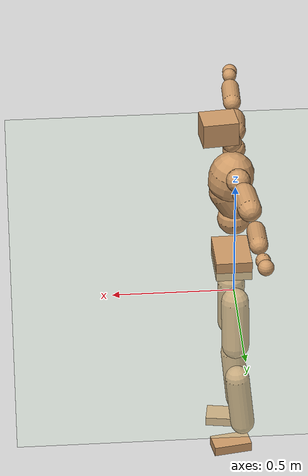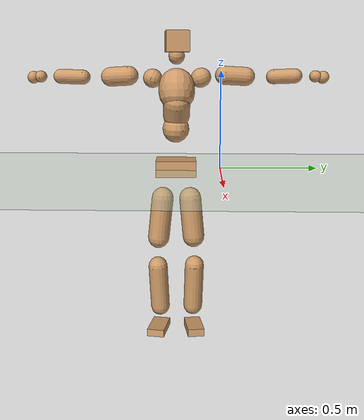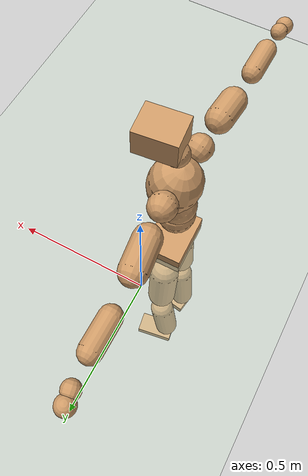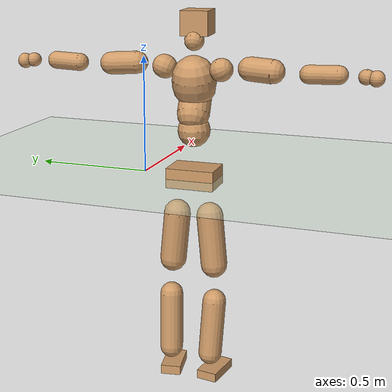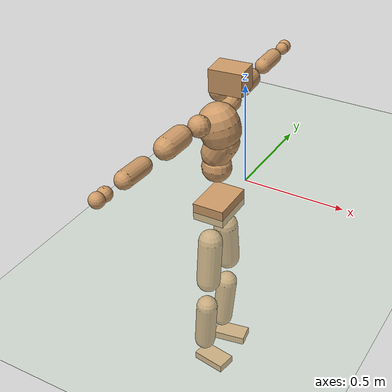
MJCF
<mujoco model="humanoid">
  <compiler coordinate="local" angle="radian"/>
  <default>
    <joint damping="0.0" armature="0.01" stiffness="0.0" limited="true"/>
    <geom conaffinity="1" condim="3" contype="7" margin="0.001" rgba="0.8 0.6 .4 1"/>
  </default>
  <asset>
    <texture type="skybox" builtin="gradient" rgb1=".4 .5 .6" rgb2="0 0 0" width="100" height="100"/>
    <texture builtin="flat" height="1278" mark="cross" markrgb="1 1 1" name="texgeom" random="0.01" rgb1="0.8 0.6 0.4" rgb2="0.8 0.6 0.4" type="cube" width="127"/>
    <texture builtin="checker" height="100" name="texplane" rgb1="0 0 0" rgb2="0.8 0.8 0.8" type="2d" width="100"/>
    <material name="MatPlane" reflectance="0.5" shininess="1" specular="1" texrepeat="60 60" texture="texplane"/>
    <material name="geom" texture="texgeom" texuniform="true"/>
  </asset>
  <worldbody>
    <light cutoff="100" diffuse="1 1 1" dir="-0 0 -1.3" directional="true" exponent="1" pos="0 0 1.3" specular=".1 .1 .1"/>
    <geom conaffinity="1" condim="3" name="floor" pos="0 0 0" rgba="0.8 0.9 0.8 1" size="100 100 .2" type="plane" material="MatPlane"/>
    <body name="Pelvis" pos="-0.0034 -0.2303 0.0156">
      <freejoint name="Pelvis"/>
      <geom type="box" contype="1" conaffinity="1" density="5359.375427" pos="-0.0073 -0.0002 -0.0134" size="0.0752 0.1039 0.0422" quat="0.9999 0.0000 0.0000 0.0104" name="Pelvis"/>
      <body name="L_Hip" pos="-0.0164 0.0666 -0.0957">
        <joint name="L_Hip_x" type="hinge" pos="0 0 0" axis="1 0 0" stiffness="1600" damping="160" armature="0.02" range="-180.0000 180.0000"/>
        <joint name="L_Hip_y" type="hinge" pos="0 0 0" axis="0 1 0" stiffness="1600" damping="160" armature="0.02" range="-180.0000 180.0000"/>
        <joint name="L_Hip_z" type="hinge" pos="0 0 0" axis="0 0 1" stiffness="1600" damping="160" armature="0.02" range="-180.0000 180.0000"/>
        <geom type="capsule" contype="1" conaffinity="1" density="2040.816327" size="0.0579" fromto="-0.0008 0.0078 -0.0876 -0.0027 0.0268 -0.2994" name="L_Hip"/>
        <body name="L_Knee" pos="-0.0035 0.0346 -0.387">
          <joint name="L_Knee_x" type="hinge" pos="0 0 0" axis="1 0 0" stiffness="1600" damping="160" armature="0.02" range="-180.0000 180.0000"/>
          <joint name="L_Knee_y" type="hinge" pos="0 0 0" axis="0 1 0" stiffness="1600" damping="160" armature="0.02" range="-180.0000 180.0000"/>
          <joint name="L_Knee_z" type="hinge" pos="0 0 0" axis="0 0 1" stiffness="1600" damping="160" armature="0.02" range="-180.0000 180.0000"/>
          <geom type="capsule" contype="1" conaffinity="1" density="1234.567901" size="0.0512" fromto="-0.0087 -0.0026 -0.0807 -0.0351 -0.0104 -0.3266" name="L_Knee"/>
          <body name="L_Ankle" pos="-0.0438 -0.0129 -0.4073">
            <joint name="L_Ankle_x" type="hinge" pos="0 0 0" axis="1 0 0" stiffness="1600" damping="160" armature="0.02" range="-180.0000 180.0000"/>
            <joint name="L_Ankle_y" type="hinge" pos="0 0 0" axis="0 1 0" stiffness="1600" damping="160" armature="0.02" range="-180.0000 180.0000"/>
            <joint name="L_Ankle_z" type="hinge" pos="0 0 0" axis="0 0 1" stiffness="1600" damping="160" armature="0.02" range="-180.0000 180.0000"/>
            <geom type="box" contype="1" conaffinity="1" density="999.999972" pos="0.0583 0.0098 -0.0282" size="0.0816 0.0442 0.0207" quat="0.9966 0.0000 0.0000 0.0829" name="L_Ankle"/>
            <body name="L_Toe" pos="0.1167 0.0195 -0.0563">
              <joint name="L_Toe_x" type="hinge" pos="0 0 0" axis="1 0 0" stiffness="1000" damping="100" armature="0.02" range="-180.0000 180.0000"/>
              <joint name="L_Toe_y" type="hinge" pos="0 0 0" axis="0 1 0" stiffness="1000" damping="100" armature="0.02" range="-180.0000 180.0000"/>
              <joint name="L_Toe_z" type="hinge" pos="0 0 0" axis="0 0 1" stiffness="1000" damping="100" armature="0.02" range="-180.0000 180.0000"/>
              <geom type="box" contype="1" conaffinity="1" density="8325848.632717" pos="0.0000 0.0000 0.0280" size="0.0009 0.0022 0.001" quat="0.9960 0.0000 0.0000 0.0897" name="L_Toe"/>
            </body>
          </body>
        </body>
      </body>
      <body name="R_Hip" pos="-0.0119 -0.0637 -0.0953">
        <joint name="R_Hip_x" type="hinge" pos="0 0 0" axis="1 0 0" stiffness="1600" damping="160" armature="0.02" range="-180.0000 180.0000"/>
        <joint name="R_Hip_y" type="hinge" pos="0 0 0" axis="0 1 0" stiffness="1600" damping="160" armature="0.02" range="-180.0000 180.0000"/>
        <joint name="R_Hip_z" type="hinge" pos="0 0 0" axis="0 0 1" stiffness="1600" damping="160" armature="0.02" range="-180.0000 180.0000"/>
        <geom type="capsule" contype="1" conaffinity="1" density="2040.816327" size="0.0571" fromto="-0.0016 -0.0090 -0.0866 -0.0057 -0.0320 -0.3079" name="R_Hip"/>
        <body name="R_Knee" pos="-0.0073 -0.041 -0.3945">
          <joint name="R_Knee_x" type="hinge" pos="0 0 0" axis="1 0 0" stiffness="1600" damping="160" armature="0.02" range="-180.0000 180.0000"/>
          <joint name="R_Knee_y" type="hinge" pos="0 0 0" axis="0 1 0" stiffness="1600" damping="160" armature="0.02" range="-180.0000 180.0000"/>
          <joint name="R_Knee_z" type="hinge" pos="0 0 0" axis="0 0 1" stiffness="1600" damping="160" armature="0.02" range="-180.0000 180.0000"/>
          <geom type="capsule" contype="1" conaffinity="1" density="1234.567901" size="0.0514" fromto="-0.0080 0.0033 -0.0809 -0.0321 0.0131 -0.3239" name="R_Knee"/>
          <body name="R_Ankle" pos="-0.0402 0.0163 -0.4049">
            <joint name="R_Ankle_x" type="hinge" pos="0 0 0" axis="1 0 0" stiffness="1600" damping="160" armature="0.02" range="-180.0000 180.0000"/>
            <joint name="R_Ankle_y" type="hinge" pos="0 0 0" axis="0 1 0" stiffness="1600" damping="160" armature="0.02" range="-180.0000 180.0000"/>
            <joint name="R_Ankle_z" type="hinge" pos="0 0 0" axis="0 0 1" stiffness="1600" damping="160" armature="0.02" range="-180.0000 180.0000"/>
            <geom type="box" contype="1" conaffinity="1" density="1000.000058" pos="0.0600 -0.0094 -0.0243" size="0.0837 0.0461 0.0198" quat="0.9970 0.0000 0.0000 -0.0774" name="R_Ankle"/>
            <body name="R_Toe" pos="0.1199 -0.0187 -0.0486">
              <joint name="R_Toe_x" type="hinge" pos="0 0 0" axis="1 0 0" stiffness="1000" damping="100" armature="0.02" range="-180.0000 180.0000"/>
              <joint name="R_Toe_y" type="hinge" pos="0 0 0" axis="0 1 0" stiffness="1000" damping="100" armature="0.02" range="-180.0000 180.0000"/>
              <joint name="R_Toe_z" type="hinge" pos="0 0 0" axis="0 0 1" stiffness="1000" damping="100" armature="0.02" range="-180.0000 180.0000"/>
              <geom type="box" contype="1" conaffinity="1" density="8217818.840924" pos="0.0000 0.0000 0.0272" size="0.0008 0.0022 0.0011" quat="0.9977 0.0000 0.0000 -0.0682" name="R_Toe"/>
            </body>
          </body>
        </body>
      </body>
      <body name="Torso" pos="-0.0153 -0.0038 0.1104">
        <joint name="Torso_x" type="hinge" pos="0 0 0" axis="1 0 0" stiffness="2000" damping="200" armature="0.02" range="-180.0000 180.0000"/>
        <joint name="Torso_y" type="hinge" pos="0 0 0" axis="0 1 0" stiffness="2000" damping="200" armature="0.02" range="-180.0000 180.0000"/>
        <joint name="Torso_z" type="hinge" pos="0 0 0" axis="0 0 1" stiffness="2000" damping="200" armature="0.02" range="-180.0000 180.0000"/>
        <geom type="capsule" contype="1" conaffinity="1" density="2040.816327" size="0.069" fromto="0.0012 0.0029 0.0754 0.0013 0.0030 0.0774" name="Torso"/>
        <body name="Spine" pos="0.0025 0.0059 0.1528">
          <joint name="Spine_x" type="hinge" pos="0 0 0" axis="1 0 0" stiffness="2000" damping="200" armature="0.02" range="-180.0000 180.0000"/>
          <joint name="Spine_y" type="hinge" pos="0 0 0" axis="0 1 0" stiffness="2000" damping="200" armature="0.02" range="-180.0000 180.0000"/>
          <joint name="Spine_z" type="hinge" pos="0 0 0" axis="0 0 1" stiffness="2000" damping="200" armature="0.02" range="-180.0000 180.0000"/>
          <geom type="capsule" contype="1" conaffinity="1" density="2040.816327" size="0.0688" fromto="0.0349 0.0032 0.0592 -0.0034 -0.0003 -0.0057" name="Spine"/>
          <body name="Chest" pos="0.0316 0.0029 0.0535">
            <joint name="Chest_x" type="hinge" pos="0 0 0" axis="1 0 0" stiffness="2000" damping="200" armature="0.02" range="-180.0000 180.0000"/>
            <joint name="Chest_y" type="hinge" pos="0 0 0" axis="0 1 0" stiffness="2000" damping="200" armature="0.02" range="-180.0000 180.0000"/>
            <joint name="Chest_z" type="hinge" pos="0 0 0" axis="0 0 1" stiffness="2000" damping="200" armature="0.02" range="-180.0000 180.0000"/>
            <geom type="capsule" contype="1" conaffinity="1" density="2040.816327" size="0.0921" fromto="-0.0229 -0.0007 0.0892 -0.0146 -0.0004 0.0569" name="Chest"/>
            <body name="Neck" pos="-0.0442 -0.0026 0.2076">
              <joint name="Neck_x" type="hinge" pos="0 0 0" axis="1 0 0" stiffness="1000" damping="100" armature="0.02" range="-180.0000 180.0000"/>
              <joint name="Neck_y" type="hinge" pos="0 0 0" axis="0 1 0" stiffness="1000" damping="100" armature="0.02" range="-180.0000 180.0000"/>
              <joint name="Neck_z" type="hinge" pos="0 0 0" axis="0 0 1" stiffness="1000" damping="100" armature="0.02" range="-180.0000 180.0000"/>
              <geom type="capsule" contype="1" conaffinity="1" density="1000" size="0.0412" fromto="0.0254 0.0018 0.0331 0.0266 0.0019 0.0347" name="Neck"/>
              <body name="Head" pos="0.0519 0.0036 0.0679">
                <joint name="Head_x" type="hinge" pos="0 0 0" axis="1 0 0" stiffness="1000" damping="100" armature="0.02" range="-180.0000 180.0000"/>
                <joint name="Head_y" type="hinge" pos="0 0 0" axis="0 1 0" stiffness="1000" damping="100" armature="0.02" range="-180.0000 180.0000"/>
                <joint name="Head_z" type="hinge" pos="0 0 0" axis="0 0 1" stiffness="1000" damping="100" armature="0.02" range="-180.0000 180.0000"/>
                <geom type="box" contype="1" conaffinity="1" density="2249.999999" pos="0.0270 0.0028 0.0349" size="0.073 0.0585 0.051" quat="0.9986 0.0000 0.0000 0.0521" name="Head"/>
              </body>
            </body>
            <body name="L_Thorax" pos="-0.032 0.079 0.1169">
              <joint name="L_Thorax_x" type="hinge" pos="0 0 0" axis="1 0 0" stiffness="1000" damping="100" armature="0.02" range="-180.0000 180.0000"/>
              <joint name="L_Thorax_y" type="hinge" pos="0 0 0" axis="0 1 0" stiffness="1000" damping="100" armature="0.02" range="-180.0000 180.0000"/>
              <joint name="L_Thorax_z" type="hinge" pos="0 0 0" axis="0 0 1" stiffness="1000" damping="100" armature="0.02" range="-180.0000 180.0000"/>
              <geom type="capsule" contype="1" conaffinity="1" density="1000" size="0.0493" fromto="-0.0044 0.0460 0.0171 -0.0039 0.0411 0.0153" name="L_Thorax"/>
              <body name="L_Shoulder" pos="-0.0082 0.0871 0.0324">
                <joint name="L_Shoulder_x" type="hinge" pos="0 0 0" axis="1 0 0" stiffness="1000" damping="100" armature="0.02" range="-720.0000 720.0000"/>
                <joint name="L_Shoulder_y" type="hinge" pos="0 0 0" axis="0 1 0" stiffness="1000" damping="100" armature="0.02" range="-720.0000 720.0000"/>
                <joint name="L_Shoulder_z" type="hinge" pos="0 0 0" axis="0 0 1" stiffness="1000" damping="100" armature="0.02" range="-720.0000 720.0000"/>
                <geom type="capsule" contype="1" conaffinity="1" density="1000" size="0.0473" fromto="-0.0088 0.0766 -0.0042 -0.0214 0.1865 -0.0103" name="L_Shoulder"/>
                <body name="L_Elbow" pos="-0.0302 0.2632 -0.0145">
                  <joint name="L_Elbow_x" type="hinge" pos="0 0 0" axis="1 0 0" stiffness="1000" damping="100" armature="0.02" range="-720.0000 720.0000"/>
                  <joint name="L_Elbow_y" type="hinge" pos="0 0 0" axis="0 1 0" stiffness="1000" damping="100" armature="0.02" range="-720.0000 720.0000"/>
                  <joint name="L_Elbow_z" type="hinge" pos="0 0 0" axis="0 0 1" stiffness="1000" damping="100" armature="0.02" range="-720.0000 720.0000"/>
                  <geom type="capsule" contype="1" conaffinity="1" density="1000" size="0.0371" fromto="-0.0003 0.0670 0.0025 -0.0007 0.1771 0.0066" name="L_Elbow"/>
                  <body name="L_Wrist" pos="-0.0009 0.2441 0.0091">
                    <joint name="L_Wrist_x" type="hinge" pos="0 0 0" axis="1 0 0" stiffness="600" damping="60" armature="0.02" range="-180.0000 180.0000"/>
                    <joint name="L_Wrist_y" type="hinge" pos="0 0 0" axis="0 1 0" stiffness="600" damping="60" armature="0.02" range="-180.0000 180.0000"/>
                    <joint name="L_Wrist_z" type="hinge" pos="0 0 0" axis="0 0 1" stiffness="600" damping="60" armature="0.02" range="-180.0000 180.0000"/>
                    <geom type="capsule" contype="1" conaffinity="1" density="1000" size="0.0297" fromto="-0.0064 0.0385 -0.0047 -0.0068 0.0405 -0.0050" name="L_Wrist"/>
                    <body name="L_Hand" pos="-0.0132 0.079 -0.0097">
                      <joint name="L_Hand_x" type="hinge" pos="0 0 0" axis="1 0 0" stiffness="600" damping="60" armature="0.02" range="-180.0000 180.0000"/>
                      <joint name="L_Hand_y" type="hinge" pos="0 0 0" axis="0 1 0" stiffness="600" damping="60" armature="0.02" range="-180.0000 180.0000"/>
                      <joint name="L_Hand_z" type="hinge" pos="0 0 0" axis="0 0 1" stiffness="600" damping="60" armature="0.02" range="-180.0000 180.0000"/>
                      <geom type="sphere" contype="1" conaffinity="1" density="1000" size="0.0319" pos="0.0000 0.0000 0.0000" name="L_Hand"/>
                    </body>
                  </body>
                </body>
              </body>
            </body>
            <body name="R_Thorax" pos="-0.0365 -0.0796 0.1138">
              <joint name="R_Thorax_x" type="hinge" pos="0 0 0" axis="1 0 0" stiffness="1000" damping="100" armature="0.02" range="-180.0000 180.0000"/>
              <joint name="R_Thorax_y" type="hinge" pos="0 0 0" axis="0 1 0" stiffness="1000" damping="100" armature="0.02" range="-180.0000 180.0000"/>
              <joint name="R_Thorax_z" type="hinge" pos="0 0 0" axis="0 0 1" stiffness="1000" damping="100" armature="0.02" range="-180.0000 180.0000"/>
              <geom type="capsule" contype="1" conaffinity="1" density="1000" size="0.0479" fromto="-0.0050 -0.0446 0.0161 -0.0053 -0.0465 0.0168" name="R_Thorax"/>
              <body name="R_Shoulder" pos="-0.0103 -0.0911 0.0329">
                <joint name="R_Shoulder_x" type="hinge" pos="0 0 0" axis="1 0 0" stiffness="1000" damping="100" armature="0.02" range="-720.0000 720.0000"/>
                <joint name="R_Shoulder_y" type="hinge" pos="0 0 0" axis="0 1 0" stiffness="1000" damping="100" armature="0.02" range="-720.0000 720.0000"/>
                <joint name="R_Shoulder_z" type="hinge" pos="0 0 0" axis="0 0 1" stiffness="1000" damping="100" armature="0.02" range="-720.0000 720.0000"/>
                <geom type="capsule" contype="1" conaffinity="1" density="1000" size="0.0488" fromto="-0.0059 -0.0784 -0.0044 -0.0130 -0.1738 -0.0097" name="R_Shoulder"/>
                <body name="R_Elbow" pos="-0.0189 -0.2522 -0.014">
                  <joint name="R_Elbow_x" type="hinge" pos="0 0 0" axis="1 0 0" stiffness="1000" damping="100" armature="0.02" range="-720.0000 720.0000"/>
                  <joint name="R_Elbow_y" type="hinge" pos="0 0 0" axis="0 1 0" stiffness="1000" damping="100" armature="0.02" range="-720.0000 720.0000"/>
                  <joint name="R_Elbow_z" type="hinge" pos="0 0 0" axis="0 0 1" stiffness="1000" damping="100" armature="0.02" range="-720.0000 720.0000"/>
                  <geom type="capsule" contype="1" conaffinity="1" density="1000" size="0.0373" fromto="-0.0014 -0.0672 0.0022 -0.0037 -0.1833 0.0059" name="R_Elbow"/>
                  <body name="R_Wrist" pos="-0.0051 -0.2505 0.0081">
                    <joint name="R_Wrist_x" type="hinge" pos="0 0 0" axis="1 0 0" stiffness="600" damping="60" armature="0.02" range="-180.0000 180.0000"/>
                    <joint name="R_Wrist_y" type="hinge" pos="0 0 0" axis="0 1 0" stiffness="600" damping="60" armature="0.02" range="-180.0000 180.0000"/>
                    <joint name="R_Wrist_z" type="hinge" pos="0 0 0" axis="0 0 1" stiffness="600" damping="60" armature="0.02" range="-180.0000 180.0000"/>
                    <geom type="capsule" contype="1" conaffinity="1" density="1000" size="0.0299" fromto="-0.0049 -0.0382 -0.0034 -0.0051 -0.0402 -0.0036" name="R_Wrist"/>
                    <body name="R_Hand" pos="-0.01 -0.0784 -0.0069">
                      <joint name="R_Hand_x" type="hinge" pos="0 0 0" axis="1 0 0" stiffness="600" damping="60" armature="0.02" range="-180.0000 180.0000"/>
                      <joint name="R_Hand_y" type="hinge" pos="0 0 0" axis="0 1 0" stiffness="600" damping="60" armature="0.02" range="-180.0000 180.0000"/>
                      <joint name="R_Hand_z" type="hinge" pos="0 0 0" axis="0 0 1" stiffness="600" damping="60" armature="0.02" range="-180.0000 180.0000"/>
                      <geom type="sphere" contype="1" conaffinity="1" density="1000" size="0.0315" pos="0.0000 0.0000 0.0000" name="R_Hand"/>
                    </body>
                  </body>
                </body>
              </body>
            </body>
          </body>
        </body>
      </body>
    </body>
  </worldbody>
  <actuator>
    <motor name="L_Hip_x" joint="L_Hip_x" gear="500"/>
    <motor name="L_Hip_y" joint="L_Hip_y" gear="500"/>
    <motor name="L_Hip_z" joint="L_Hip_z" gear="500"/>
    <motor name="L_Knee_x" joint="L_Knee_x" gear="500"/>
    <motor name="L_Knee_y" joint="L_Knee_y" gear="500"/>
    <motor name="L_Knee_z" joint="L_Knee_z" gear="500"/>
    <motor name="L_Ankle_x" joint="L_Ankle_x" gear="500"/>
    <motor name="L_Ankle_y" joint="L_Ankle_y" gear="500"/>
    <motor name="L_Ankle_z" joint="L_Ankle_z" gear="500"/>
    <motor name="L_Toe_x" joint="L_Toe_x" gear="500"/>
    <motor name="L_Toe_y" joint="L_Toe_y" gear="500"/>
    <motor name="L_Toe_z" joint="L_Toe_z" gear="500"/>
    <motor name="R_Hip_x" joint="R_Hip_x" gear="500"/>
    <motor name="R_Hip_y" joint="R_Hip_y" gear="500"/>
    <motor name="R_Hip_z" joint="R_Hip_z" gear="500"/>
    <motor name="R_Knee_x" joint="R_Knee_x" gear="500"/>
    <motor name="R_Knee_y" joint="R_Knee_y" gear="500"/>
    <motor name="R_Knee_z" joint="R_Knee_z" gear="500"/>
    <motor name="R_Ankle_x" joint="R_Ankle_x" gear="500"/>
    <motor name="R_Ankle_y" joint="R_Ankle_y" gear="500"/>
    <motor name="R_Ankle_z" joint="R_Ankle_z" gear="500"/>
    <motor name="R_Toe_x" joint="R_Toe_x" gear="500"/>
    <motor name="R_Toe_y" joint="R_Toe_y" gear="500"/>
    <motor name="R_Toe_z" joint="R_Toe_z" gear="500"/>
    <motor name="Torso_x" joint="Torso_x" gear="500"/>
    <motor name="Torso_y" joint="Torso_y" gear="500"/>
    <motor name="Torso_z" joint="Torso_z" gear="500"/>
    <motor name="Spine_x" joint="Spine_x" gear="500"/>
    <motor name="Spine_y" joint="Spine_y" gear="500"/>
    <motor name="Spine_z" joint="Spine_z" gear="500"/>
    <motor name="Chest_x" joint="Chest_x" gear="500"/>
    <motor name="Chest_y" joint="Chest_y" gear="500"/>
    <motor name="Chest_z" joint="Chest_z" gear="500"/>
    <motor name="Neck_x" joint="Neck_x" gear="500"/>
    <motor name="Neck_y" joint="Neck_y" gear="500"/>
    <motor name="Neck_z" joint="Neck_z" gear="500"/>
    <motor name="Head_x" joint="Head_x" gear="500"/>
    <motor name="Head_y" joint="Head_y" gear="500"/>
    <motor name="Head_z" joint="Head_z" gear="500"/>
    <motor name="L_Thorax_x" joint="L_Thorax_x" gear="500"/>
    <motor name="L_Thorax_y" joint="L_Thorax_y" gear="500"/>
    <motor name="L_Thorax_z" joint="L_Thorax_z" gear="500"/>
    <motor name="L_Shoulder_x" joint="L_Shoulder_x" gear="500"/>
    <motor name="L_Shoulder_y" joint="L_Shoulder_y" gear="500"/>
    <motor name="L_Shoulder_z" joint="L_Shoulder_z" gear="500"/>
    <motor name="L_Elbow_x" joint="L_Elbow_x" gear="500"/>
    <motor name="L_Elbow_y" joint="L_Elbow_y" gear="500"/>
    <motor name="L_Elbow_z" joint="L_Elbow_z" gear="500"/>
    <motor name="L_Wrist_x" joint="L_Wrist_x" gear="500"/>
    <motor name="L_Wrist_y" joint="L_Wrist_y" gear="500"/>
    <motor name="L_Wrist_z" joint="L_Wrist_z" gear="500"/>
    <motor name="L_Hand_x" joint="L_Hand_x" gear="500"/>
    <motor name="L_Hand_y" joint="L_Hand_y" gear="500"/>
    <motor name="L_Hand_z" joint="L_Hand_z" gear="500"/>
    <motor name="R_Thorax_x" joint="R_Thorax_x" gear="500"/>
    <motor name="R_Thorax_y" joint="R_Thorax_y" gear="500"/>
    <motor name="R_Thorax_z" joint="R_Thorax_z" gear="500"/>
    <motor name="R_Shoulder_x" joint="R_Shoulder_x" gear="500"/>
    <motor name="R_Shoulder_y" joint="R_Shoulder_y" gear="500"/>
    <motor name="R_Shoulder_z" joint="R_Shoulder_z" gear="500"/>
    <motor name="R_Elbow_x" joint="R_Elbow_x" gear="500"/>
    <motor name="R_Elbow_y" joint="R_Elbow_y" gear="500"/>
    <motor name="R_Elbow_z" joint="R_Elbow_z" gear="500"/>
    <motor name="R_Wrist_x" joint="R_Wrist_x" gear="500"/>
    <motor name="R_Wrist_y" joint="R_Wrist_y" gear="500"/>
    <motor name="R_Wrist_z" joint="R_Wrist_z" gear="500"/>
    <motor name="R_Hand_x" joint="R_Hand_x" gear="500"/>
    <motor name="R_Hand_y" joint="R_Hand_y" gear="500"/>
    <motor name="R_Hand_z" joint="R_Hand_z" gear="500"/>
  </actuator>
  <contact>
    <exclude body1="Torso" body2="Chest"/>
    <exclude body1="Head" body2="Chest"/>
    <exclude body1="R_Knee" body2="R_Toe"/>
    <exclude body1="R_Knee" body2="L_Ankle"/>
    <exclude body1="R_Knee" body2="L_Toe"/>
    <exclude body1="L_Knee" body2="L_Toe"/>
    <exclude body1="L_Knee" body2="R_Ankle"/>
    <exclude body1="L_Knee" body2="R_Toe"/>
    <exclude body1="L_Shoulder" body2="Chest"/>
    <exclude body1="R_Shoulder" body2="Chest"/>
  </contact>
  <sensor/>
  <size njmax="700" nconmax="700"/>
</mujoco>
